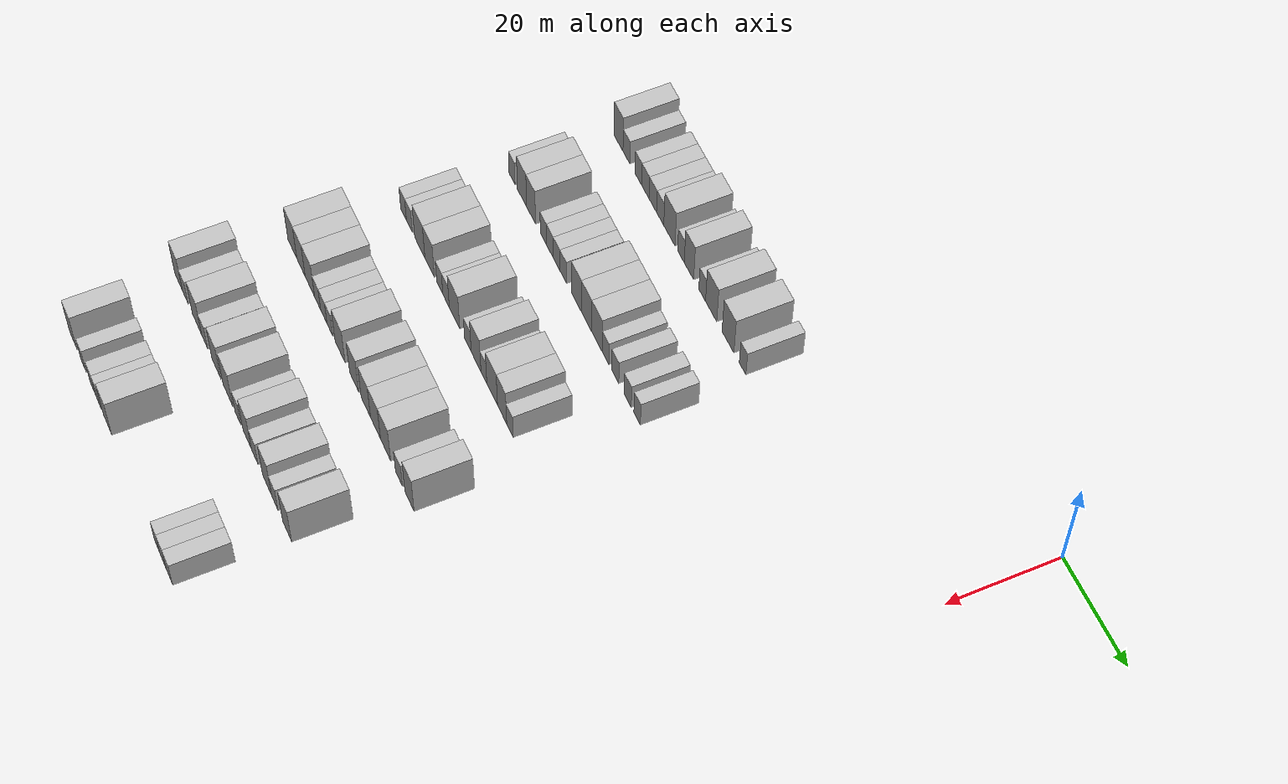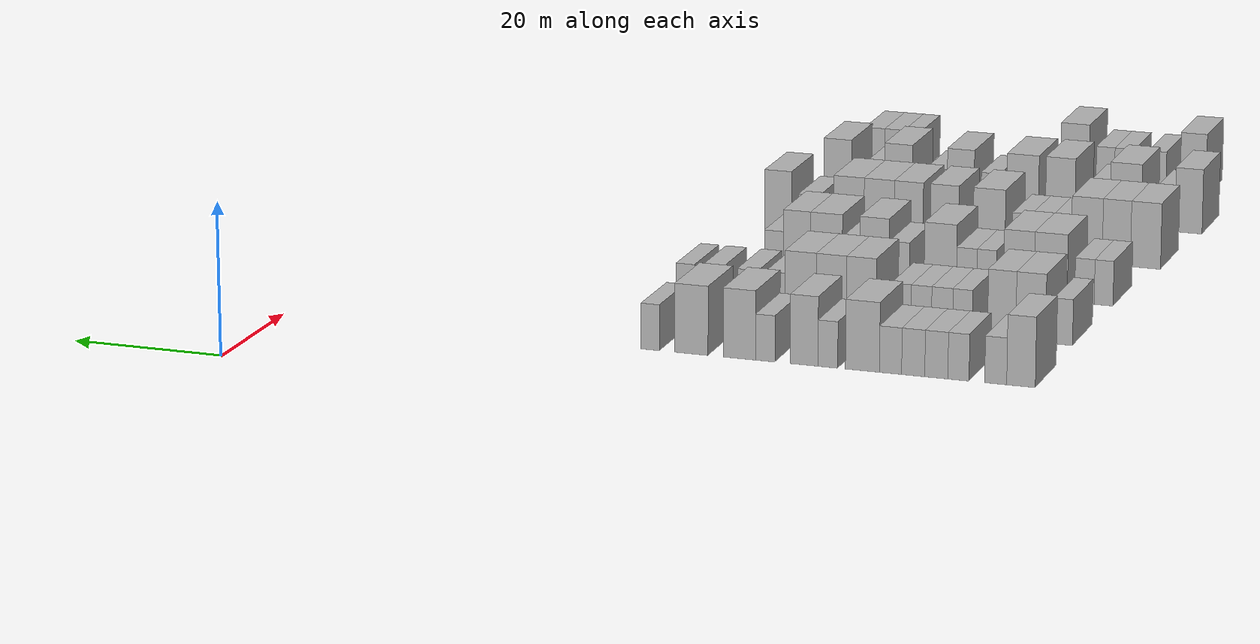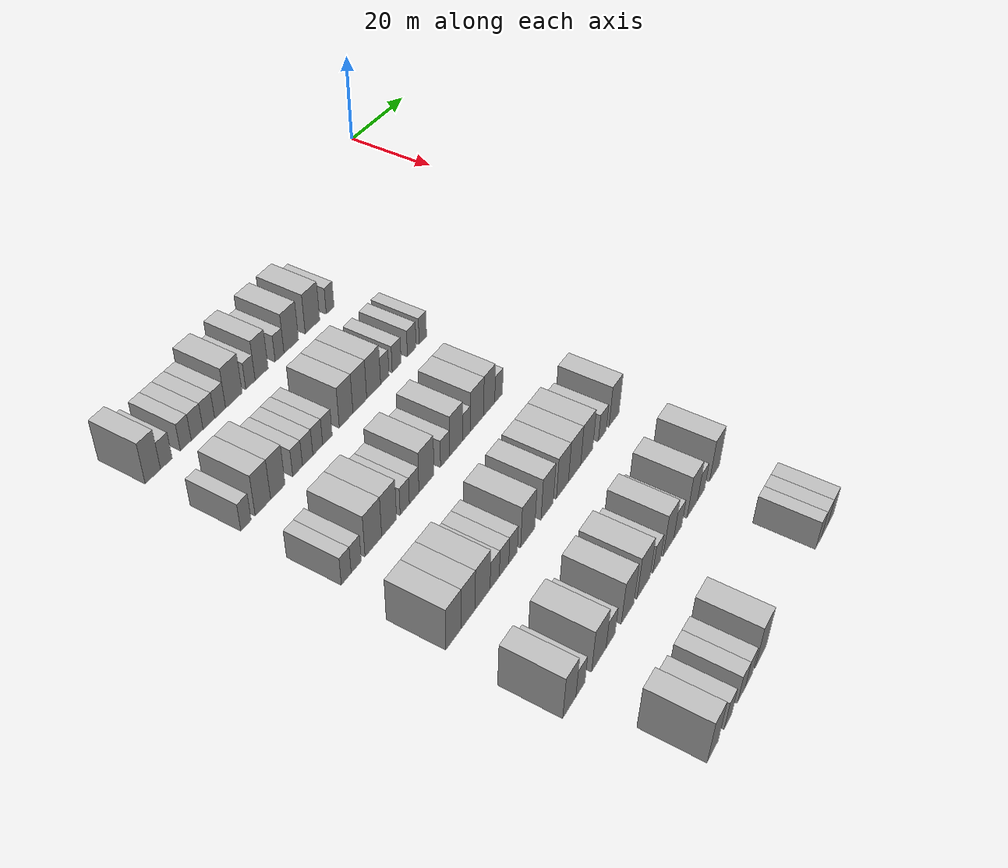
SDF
<sdf version="1.6">
 <world name="default">
  <model name="building_68">
   <static>1</static>
   <pose>25.0000 -98.1795 0 0.000000 0.000000 0.000000</pose>
   <link name="link">
    <pose>0 0 4.50 0 0 0</pose>
    <collision name="collision"><geometry><box><size>10.0000 3.6378 9.0000</size></box></geometry></collision>
    <visual name="visual">
     <cast_shadows>0</cast_shadows>
     <geometry><box><size>10.0000 3.6378 9.0000</size></box></geometry>
     <material>
      <script>
       <uri>model://HANNAS_wall/materials/scripts</uri>
       <uri>model://HANNAS_wall/materials/textures</uri>
       <name>vrc/HANNAS_wall</name>
      </script>
     </material>
    </visual>
   </link>
  </model>
  <model name="building_69">
   <static>1</static>
   <pose>25.0000 -94.9597 0 0.000000 0.000000 0.000000</pose>
   <link name="link">
    <pose>0 0 3.00 0 0 0</pose>
    <collision name="collision"><geometry><box><size>10.0000 2.8019 6.0000</size></box></geometry></collision>
    <visual name="visual">
     <cast_shadows>0</cast_shadows>
     <geometry><box><size>10.0000 2.8019 6.0000</size></box></geometry>
     <material>
      <script>
       <uri>model://HANNAS_wall/materials/scripts</uri>
       <uri>model://HANNAS_wall/materials/textures</uri>
       <name>vrc/HANNAS_wall</name>
      </script>
     </material>
    </visual>
   </link>
  </model>
  <model name="building_70">
   <static>1</static>
   <pose>25.0000 -90.2027 0 0.000000 0.000000 0.000000</pose>
   <link name="link">
    <pose>0 0 3.00 0 0 0</pose>
    <collision name="collision"><geometry><box><size>10.0000 2.7120 6.0000</size></box></geometry></collision>
    <visual name="visual">
     <cast_shadows>0</cast_shadows>
     <geometry><box><size>10.0000 2.7120 6.0000</size></box></geometry>
     <material>
      <script>
       <uri>model://HANNAS_wall/materials/scripts</uri>
       <uri>model://HANNAS_wall/materials/textures</uri>
       <name>vrc/HANNAS_wall</name>
      </script>
     </material>
    </visual>
   </link>
  </model>
  <model name="building_71">
   <static>1</static>
   <pose>25.0000 -87.3622 0 0.000000 0.000000 0.000000</pose>
   <link name="link">
    <pose>0 0 3.00 0 0 0</pose>
    <collision name="collision"><geometry><box><size>10.0000 2.9691 6.0000</size></box></geometry></collision>
    <visual name="visual">
     <cast_shadows>0</cast_shadows>
     <geometry><box><size>10.0000 2.9691 6.0000</size></box></geometry>
     <material>
      <script>
       <uri>model://HANNAS_wall/materials/scripts</uri>
       <uri>model://HANNAS_wall/materials/textures</uri>
       <name>vrc/HANNAS_wall</name>
      </script>
     </material>
    </visual>
   </link>
  </model>
  <model name="building_72">
   <static>1</static>
   <pose>25.0000 -84.3851 0 0.000000 0.000000 0.000000</pose>
   <link name="link">
    <pose>0 0 3.00 0 0 0</pose>
    <collision name="collision"><geometry><box><size>10.0000 2.9850 6.0000</size></box></geometry></collision>
    <visual name="visual">
     <cast_shadows>0</cast_shadows>
     <geometry><box><size>10.0000 2.9850 6.0000</size></box></geometry>
     <material>
      <script>
       <uri>model://HANNAS_wall/materials/scripts</uri>
       <uri>model://HANNAS_wall/materials/textures</uri>
       <name>vrc/HANNAS_wall</name>
      </script>
     </material>
    </visual>
   </link>
  </model>
  <model name="building_73">
   <static>1</static>
   <pose>25.0000 -81.4628 0 0.000000 0.000000 0.000000</pose>
   <link name="link">
    <pose>0 0 3.00 0 0 0</pose>
    <collision name="collision"><geometry><box><size>10.0000 2.8596 6.0000</size></box></geometry></collision>
    <visual name="visual">
     <cast_shadows>0</cast_shadows>
     <geometry><box><size>10.0000 2.8596 6.0000</size></box></geometry>
     <material>
      <script>
       <uri>model://HANNAS_wall/materials/scripts</uri>
       <uri>model://HANNAS_wall/materials/textures</uri>
       <name>vrc/HANNAS_wall</name>
      </script>
     </material>
    </visual>
   </link>
  </model>
  <model name="building_74">
   <static>1</static>
   <pose>25.0000 -77.8253 0 0.000000 0.000000 0.000000</pose>
   <link name="link">
    <pose>0 0 4.50 0 0 0</pose>
    <collision name="collision"><geometry><box><size>10.0000 4.4153 9.0000</size></box></geometry></collision>
    <visual name="visual">
     <cast_shadows>0</cast_shadows>
     <geometry><box><size>10.0000 4.4153 9.0000</size></box></geometry>
     <material>
      <script>
       <uri>model://HANNAS_wall/materials/scripts</uri>
       <uri>model://HANNAS_wall/materials/textures</uri>
       <name>vrc/HANNAS_wall</name>
      </script>
     </material>
    </visual>
   </link>
  </model>
  <model name="building_75">
   <static>1</static>
   <pose>25.0000 -73.3336 0 0.000000 0.000000 0.000000</pose>
   <link name="link">
    <pose>0 0 3.00 0 0 0</pose>
    <collision name="collision"><geometry><box><size>10.0000 2.5679 6.0000</size></box></geometry></collision>
    <visual name="visual">
     <cast_shadows>0</cast_shadows>
     <geometry><box><size>10.0000 2.5679 6.0000</size></box></geometry>
     <material>
      <script>
       <uri>model://HANNAS_wall/materials/scripts</uri>
       <uri>model://HANNAS_wall/materials/textures</uri>
       <name>vrc/HANNAS_wall</name>
      </script>
     </material>
    </visual>
   </link>
  </model>
  <model name="building_76">
   <static>1</static>
   <pose>25.0000 -70.2346 0 0.000000 0.000000 0.000000</pose>
   <link name="link">
    <pose>0 0 4.50 0 0 0</pose>
    <collision name="collision"><geometry><box><size>10.0000 3.6302 9.0000</size></box></geometry></collision>
    <visual name="visual">
     <cast_shadows>0</cast_shadows>
     <geometry><box><size>10.0000 3.6302 9.0000</size></box></geometry>
     <material>
      <script>
       <uri>model://HANNAS_wall/materials/scripts</uri>
       <uri>model://HANNAS_wall/materials/textures</uri>
       <name>vrc/HANNAS_wall</name>
      </script>
     </material>
    </visual>
   </link>
  </model>
  <model name="building_77">
   <static>1</static>
   <pose>25.0000 -65.1470 0 0.000000 0.000000 0.000000</pose>
   <link name="link">
    <pose>0 0 3.00 0 0 0</pose>
    <collision name="collision"><geometry><box><size>10.0000 2.5449 6.0000</size></box></geometry></collision>
    <visual name="visual">
     <cast_shadows>0</cast_shadows>
     <geometry><box><size>10.0000 2.5449 6.0000</size></box></geometry>
     <material>
      <script>
       <uri>model://HANNAS_wall/materials/scripts</uri>
       <uri>model://HANNAS_wall/materials/textures</uri>
       <name>vrc/HANNAS_wall</name>
      </script>
     </material>
    </visual>
   </link>
  </model>
  <model name="building_78">
   <static>1</static>
   <pose>25.0000 -61.7472 0 0.000000 0.000000 0.000000</pose>
   <link name="link">
    <pose>0 0 4.50 0 0 0</pose>
    <collision name="collision"><geometry><box><size>10.0000 4.2547 9.0000</size></box></geometry></collision>
    <visual name="visual">
     <cast_shadows>0</cast_shadows>
     <geometry><box><size>10.0000 4.2547 9.0000</size></box></geometry>
     <material>
      <script>
       <uri>model://HANNAS_wall/materials/scripts</uri>
       <uri>model://HANNAS_wall/materials/textures</uri>
       <name>vrc/HANNAS_wall</name>
      </script>
     </material>
    </visual>
   </link>
  </model>
  <model name="building_79">
   <static>1</static>
   <pose>25.0000 -55.4081 0 0.000000 0.000000 0.000000</pose>
   <link name="link">
    <pose>0 0 4.50 0 0 0</pose>
    <collision name="collision"><geometry><box><size>10.0000 4.4236 9.0000</size></box></geometry></collision>
    <visual name="visual">
     <cast_shadows>0</cast_shadows>
     <geometry><box><size>10.0000 4.4236 9.0000</size></box></geometry>
     <material>
      <script>
       <uri>model://HANNAS_wall/materials/scripts</uri>
       <uri>model://HANNAS_wall/materials/textures</uri>
       <name>vrc/HANNAS_wall</name>
      </script>
     </material>
    </visual>
   </link>
  </model>
  <model name="building_80">
   <static>1</static>
   <pose>25.0000 -49.9719 0 0.000000 0.000000 0.000000</pose>
   <link name="link">
    <pose>0 0 3.00 0 0 0</pose>
    <collision name="collision"><geometry><box><size>10.0000 2.4488 6.0000</size></box></geometry></collision>
    <visual name="visual">
     <cast_shadows>0</cast_shadows>
     <geometry><box><size>10.0000 2.4488 6.0000</size></box></geometry>
     <material>
      <script>
       <uri>model://HANNAS_wall/materials/scripts</uri>
       <uri>model://HANNAS_wall/materials/textures</uri>
       <name>vrc/HANNAS_wall</name>
      </script>
     </material>
    </visual>
   </link>
  </model>
  <model name="building_248">
   <static>1</static>
   <pose>44.0000 -98.4805 0 0.000000 0.000000 0.000000</pose>
   <link name="link">
    <pose>0 0 3.00 0 0 0</pose>
    <collision name="collision"><geometry><box><size>10.0000 2.5162 6.0000</size></box></geometry></collision>
    <visual name="visual">
     <cast_shadows>0</cast_shadows>
     <geometry><box><size>10.0000 2.5162 6.0000</size></box></geometry>
     <material>
      <script>
       <uri>model://HANNAS_wall/materials/scripts</uri>
       <uri>model://HANNAS_wall/materials/textures</uri>
       <name>vrc/HANNAS_wall</name>
      </script>
     </material>
    </visual>
   </link>
  </model>
  <model name="building_249">
   <static>1</static>
   <pose>44.0000 -94.2760 0 0.000000 0.000000 0.000000</pose>
   <link name="link">
    <pose>0 0 4.50 0 0 0</pose>
    <collision name="collision"><geometry><box><size>10.0000 3.8926 9.0000</size></box></geometry></collision>
    <visual name="visual">
     <cast_shadows>0</cast_shadows>
     <geometry><box><size>10.0000 3.8926 9.0000</size></box></geometry>
     <material>
      <script>
       <uri>model://HANNAS_wall/materials/scripts</uri>
       <uri>model://HANNAS_wall/materials/textures</uri>
       <name>vrc/HANNAS_wall</name>
      </script>
     </material>
    </visual>
   </link>
  </model>
  <model name="building_250">
   <static>1</static>
   <pose>44.0000 -90.4767 0 0.000000 0.000000 0.000000</pose>
   <link name="link">
    <pose>0 0 4.50 0 0 0</pose>
    <collision name="collision"><geometry><box><size>10.0000 3.7061 9.0000</size></box></geometry></collision>
    <visual name="visual">
     <cast_shadows>0</cast_shadows>
     <geometry><box><size>10.0000 3.7061 9.0000</size></box></geometry>
     <material>
      <script>
       <uri>model://HANNAS_wall/materials/scripts</uri>
       <uri>model://HANNAS_wall/materials/textures</uri>
       <name>vrc/HANNAS_wall</name>
      </script>
     </material>
    </visual>
   </link>
  </model>
  <model name="building_251">
   <static>1</static>
   <pose>44.0000 -85.3222 0 0.000000 0.000000 0.000000</pose>
   <link name="link">
    <pose>0 0 3.00 0 0 0</pose>
    <collision name="collision"><geometry><box><size>10.0000 2.6028 6.0000</size></box></geometry></collision>
    <visual name="visual">
     <cast_shadows>0</cast_shadows>
     <geometry><box><size>10.0000 2.6028 6.0000</size></box></geometry>
     <material>
      <script>
       <uri>model://HANNAS_wall/materials/scripts</uri>
       <uri>model://HANNAS_wall/materials/textures</uri>
       <name>vrc/HANNAS_wall</name>
      </script>
     </material>
    </visual>
   </link>
  </model>
  <model name="building_252">
   <static>1</static>
   <pose>44.0000 -82.6232 0 0.000000 0.000000 0.000000</pose>
   <link name="link">
    <pose>0 0 3.00 0 0 0</pose>
    <collision name="collision"><geometry><box><size>10.0000 2.7951 6.0000</size></box></geometry></collision>
    <visual name="visual">
     <cast_shadows>0</cast_shadows>
     <geometry><box><size>10.0000 2.7951 6.0000</size></box></geometry>
     <material>
      <script>
       <uri>model://HANNAS_wall/materials/scripts</uri>
       <uri>model://HANNAS_wall/materials/textures</uri>
       <name>vrc/HANNAS_wall</name>
      </script>
     </material>
    </visual>
   </link>
  </model>
  <model name="building_253">
   <static>1</static>
   <pose>44.0000 -79.8753 0 0.000000 0.000000 0.000000</pose>
   <link name="link">
    <pose>0 0 3.00 0 0 0</pose>
    <collision name="collision"><geometry><box><size>10.0000 2.7007 6.0000</size></box></geometry></collision>
    <visual name="visual">
     <cast_shadows>0</cast_shadows>
     <geometry><box><size>10.0000 2.7007 6.0000</size></box></geometry>
     <material>
      <script>
       <uri>model://HANNAS_wall/materials/scripts</uri>
       <uri>model://HANNAS_wall/materials/textures</uri>
       <name>vrc/HANNAS_wall</name>
      </script>
     </material>
    </visual>
   </link>
  </model>
  <model name="building_254">
   <static>1</static>
   <pose>44.0000 -77.2009 0 0.000000 0.000000 0.000000</pose>
   <link name="link">
    <pose>0 0 3.00 0 0 0</pose>
    <collision name="collision"><geometry><box><size>10.0000 2.6481 6.0000</size></box></geometry></collision>
    <visual name="visual">
     <cast_shadows>0</cast_shadows>
     <geometry><box><size>10.0000 2.6481 6.0000</size></box></geometry>
     <material>
      <script>
       <uri>model://HANNAS_wall/materials/scripts</uri>
       <uri>model://HANNAS_wall/materials/textures</uri>
       <name>vrc/HANNAS_wall</name>
      </script>
     </material>
    </visual>
   </link>
  </model>
  <model name="building_255">
   <static>1</static>
   <pose>44.0000 -71.8990 0 0.000000 0.000000 0.000000</pose>
   <link name="link">
    <pose>0 0 4.50 0 0 0</pose>
    <collision name="collision"><geometry><box><size>10.0000 3.9558 9.0000</size></box></geometry></collision>
    <visual name="visual">
     <cast_shadows>0</cast_shadows>
     <geometry><box><size>10.0000 3.9558 9.0000</size></box></geometry>
     <material>
      <script>
       <uri>model://HANNAS_wall/materials/scripts</uri>
       <uri>model://HANNAS_wall/materials/textures</uri>
       <name>vrc/HANNAS_wall</name>
      </script>
     </material>
    </visual>
   </link>
  </model>
  <model name="building_256">
   <static>1</static>
   <pose>44.0000 -67.8866 0 0.000000 0.000000 0.000000</pose>
   <link name="link">
    <pose>0 0 4.50 0 0 0</pose>
    <collision name="collision"><geometry><box><size>10.0000 4.0691 9.0000</size></box></geometry></collision>
    <visual name="visual">
     <cast_shadows>0</cast_shadows>
     <geometry><box><size>10.0000 4.0691 9.0000</size></box></geometry>
     <material>
      <script>
       <uri>model://HANNAS_wall/materials/scripts</uri>
       <uri>model://HANNAS_wall/materials/textures</uri>
       <name>vrc/HANNAS_wall</name>
      </script>
     </material>
    </visual>
   </link>
  </model>
  <model name="building_257">
   <static>1</static>
   <pose>44.0000 -63.7514 0 0.000000 0.000000 0.000000</pose>
   <link name="link">
    <pose>0 0 4.50 0 0 0</pose>
    <collision name="collision"><geometry><box><size>10.0000 4.2013 9.0000</size></box></geometry></collision>
    <visual name="visual">
     <cast_shadows>0</cast_shadows>
     <geometry><box><size>10.0000 4.2013 9.0000</size></box></geometry>
     <material>
      <script>
       <uri>model://HANNAS_wall/materials/scripts</uri>
       <uri>model://HANNAS_wall/materials/textures</uri>
       <name>vrc/HANNAS_wall</name>
      </script>
     </material>
    </visual>
   </link>
  </model>
  <model name="building_258">
   <static>1</static>
   <pose>44.0000 -60.3575 0 0.000000 0.000000 0.000000</pose>
   <link name="link">
    <pose>0 0 3.00 0 0 0</pose>
    <collision name="collision"><geometry><box><size>10.0000 2.5864 6.0000</size></box></geometry></collision>
    <visual name="visual">
     <cast_shadows>0</cast_shadows>
     <geometry><box><size>10.0000 2.5864 6.0000</size></box></geometry>
     <material>
      <script>
       <uri>model://HANNAS_wall/materials/scripts</uri>
       <uri>model://HANNAS_wall/materials/textures</uri>
       <name>vrc/HANNAS_wall</name>
      </script>
     </material>
    </visual>
   </link>
  </model>
  <model name="building_259">
   <static>1</static>
   <pose>44.0000 -56.6577 0 0.000000 0.000000 0.000000</pose>
   <link name="link">
    <pose>0 0 3.00 0 0 0</pose>
    <collision name="collision"><geometry><box><size>10.0000 2.8132 6.0000</size></box></geometry></collision>
    <visual name="visual">
     <cast_shadows>0</cast_shadows>
     <geometry><box><size>10.0000 2.8132 6.0000</size></box></geometry>
     <material>
      <script>
       <uri>model://HANNAS_wall/materials/scripts</uri>
       <uri>model://HANNAS_wall/materials/textures</uri>
       <name>vrc/HANNAS_wall</name>
      </script>
     </material>
    </visual>
   </link>
  </model>
  <model name="building_260">
   <static>1</static>
   <pose>44.0000 -51.8497 0 0.000000 0.000000 0.000000</pose>
   <link name="link">
    <pose>0 0 3.00 0 0 0</pose>
    <collision name="collision"><geometry><box><size>10.0000 2.8027 6.0000</size></box></geometry></collision>
    <visual name="visual">
     <cast_shadows>0</cast_shadows>
     <geometry><box><size>10.0000 2.8027 6.0000</size></box></geometry>
     <material>
      <script>
       <uri>model://HANNAS_wall/materials/scripts</uri>
       <uri>model://HANNAS_wall/materials/textures</uri>
       <name>vrc/HANNAS_wall</name>
      </script>
     </material>
    </visual>
   </link>
  </model>
  <model name="building_261">
   <static>1</static>
   <pose>44.0000 -48.2028 0 0.000000 0.000000 0.000000</pose>
   <link name="link">
    <pose>0 0 3.00 0 0 0</pose>
    <collision name="collision"><geometry><box><size>10.0000 2.4911 6.0000</size></box></geometry></collision>
    <visual name="visual">
     <cast_shadows>0</cast_shadows>
     <geometry><box><size>10.0000 2.4911 6.0000</size></box></geometry>
     <material>
      <script>
       <uri>model://HANNAS_wall/materials/scripts</uri>
       <uri>model://HANNAS_wall/materials/textures</uri>
       <name>vrc/HANNAS_wall</name>
      </script>
     </material>
    </visual>
   </link>
  </model>
  <model name="building_416">
   <static>1</static>
   <pose>63.0000 -98.9099 0 0.000000 0.000000 0.000000</pose>
   <link name="link">
    <pose>0 0 3.00 0 0 0</pose>
    <collision name="collision"><geometry><box><size>10.0000 2.5161 6.0000</size></box></geometry></collision>
    <visual name="visual">
     <cast_shadows>0</cast_shadows>
     <geometry><box><size>10.0000 2.5161 6.0000</size></box></geometry>
     <material>
      <script>
       <uri>model://HANNAS_wall/materials/scripts</uri>
       <uri>model://HANNAS_wall/materials/textures</uri>
       <name>vrc/HANNAS_wall</name>
      </script>
     </material>
    </visual>
   </link>
  </model>
  <model name="building_417">
   <static>1</static>
   <pose>63.0000 -96.3481 0 0.000000 0.000000 0.000000</pose>
   <link name="link">
    <pose>0 0 3.00 0 0 0</pose>
    <collision name="collision"><geometry><box><size>10.0000 2.6074 6.0000</size></box></geometry></collision>
    <visual name="visual">
     <cast_shadows>0</cast_shadows>
     <geometry><box><size>10.0000 2.6074 6.0000</size></box></geometry>
     <material>
      <script>
       <uri>model://HANNAS_wall/materials/scripts</uri>
       <uri>model://HANNAS_wall/materials/textures</uri>
       <name>vrc/HANNAS_wall</name>
      </script>
     </material>
    </visual>
   </link>
  </model>
  <model name="building_418">
   <static>1</static>
   <pose>63.0000 -91.8166 0 0.000000 0.000000 0.000000</pose>
   <link name="link">
    <pose>0 0 4.50 0 0 0</pose>
    <collision name="collision"><geometry><box><size>10.0000 4.4556 9.0000</size></box></geometry></collision>
    <visual name="visual">
     <cast_shadows>0</cast_shadows>
     <geometry><box><size>10.0000 4.4556 9.0000</size></box></geometry>
     <material>
      <script>
       <uri>model://HANNAS_wall/materials/scripts</uri>
       <uri>model://HANNAS_wall/materials/textures</uri>
       <name>vrc/HANNAS_wall</name>
      </script>
     </material>
    </visual>
   </link>
  </model>
  <model name="building_419">
   <static>1</static>
   <pose>63.0000 -87.5421 0 0.000000 0.000000 0.000000</pose>
   <link name="link">
    <pose>0 0 4.50 0 0 0</pose>
    <collision name="collision"><geometry><box><size>10.0000 4.0933 9.0000</size></box></geometry></collision>
    <visual name="visual">
     <cast_shadows>0</cast_shadows>
     <geometry><box><size>10.0000 4.0933 9.0000</size></box></geometry>
     <material>
      <script>
       <uri>model://HANNAS_wall/materials/scripts</uri>
       <uri>model://HANNAS_wall/materials/textures</uri>
       <name>vrc/HANNAS_wall</name>
      </script>
     </material>
    </visual>
   </link>
  </model>
  <model name="building_420">
   <static>1</static>
   <pose>63.0000 -83.1915 0 0.000000 0.000000 0.000000</pose>
   <link name="link">
    <pose>0 0 3.00 0 0 0</pose>
    <collision name="collision"><geometry><box><size>10.0000 2.6080 6.0000</size></box></geometry></collision>
    <visual name="visual">
     <cast_shadows>0</cast_shadows>
     <geometry><box><size>10.0000 2.6080 6.0000</size></box></geometry>
     <material>
      <script>
       <uri>model://HANNAS_wall/materials/scripts</uri>
       <uri>model://HANNAS_wall/materials/textures</uri>
       <name>vrc/HANNAS_wall</name>
      </script>
     </material>
    </visual>
   </link>
  </model>
  <model name="building_421">
   <static>1</static>
   <pose>63.0000 -80.5084 0 0.000000 0.000000 0.000000</pose>
   <link name="link">
    <pose>0 0 3.00 0 0 0</pose>
    <collision name="collision"><geometry><box><size>10.0000 2.7582 6.0000</size></box></geometry></collision>
    <visual name="visual">
     <cast_shadows>0</cast_shadows>
     <geometry><box><size>10.0000 2.7582 6.0000</size></box></geometry>
     <material>
      <script>
       <uri>model://HANNAS_wall/materials/scripts</uri>
       <uri>model://HANNAS_wall/materials/textures</uri>
       <name>vrc/HANNAS_wall</name>
      </script>
     </material>
    </visual>
   </link>
  </model>
  <model name="building_422">
   <static>1</static>
   <pose>63.0000 -76.9272 0 0.000000 0.000000 0.000000</pose>
   <link name="link">
    <pose>0 0 4.50 0 0 0</pose>
    <collision name="collision"><geometry><box><size>10.0000 4.4040 9.0000</size></box></geometry></collision>
    <visual name="visual">
     <cast_shadows>0</cast_shadows>
     <geometry><box><size>10.0000 4.4040 9.0000</size></box></geometry>
     <material>
      <script>
       <uri>model://HANNAS_wall/materials/scripts</uri>
       <uri>model://HANNAS_wall/materials/textures</uri>
       <name>vrc/HANNAS_wall</name>
      </script>
     </material>
    </visual>
   </link>
  </model>
  <model name="building_423">
   <static>1</static>
   <pose>63.0000 -71.3343 0 0.000000 0.000000 0.000000</pose>
   <link name="link">
    <pose>0 0 3.00 0 0 0</pose>
    <collision name="collision"><geometry><box><size>10.0000 2.7818 6.0000</size></box></geometry></collision>
    <visual name="visual">
     <cast_shadows>0</cast_shadows>
     <geometry><box><size>10.0000 2.7818 6.0000</size></box></geometry>
     <material>
      <script>
       <uri>model://HANNAS_wall/materials/scripts</uri>
       <uri>model://HANNAS_wall/materials/textures</uri>
       <name>vrc/HANNAS_wall</name>
      </script>
     </material>
    </visual>
   </link>
  </model>
  <model name="building_424">
   <static>1</static>
   <pose>63.0000 -67.9296 0 0.000000 0.000000 0.000000</pose>
   <link name="link">
    <pose>0 0 4.50 0 0 0</pose>
    <collision name="collision"><geometry><box><size>10.0000 4.0277 9.0000</size></box></geometry></collision>
    <visual name="visual">
     <cast_shadows>0</cast_shadows>
     <geometry><box><size>10.0000 4.0277 9.0000</size></box></geometry>
     <material>
      <script>
       <uri>model://HANNAS_wall/materials/scripts</uri>
       <uri>model://HANNAS_wall/materials/textures</uri>
       <name>vrc/HANNAS_wall</name>
      </script>
     </material>
    </visual>
   </link>
  </model>
  <model name="building_425">
   <static>1</static>
   <pose>63.0000 -64.7150 0 0.000000 0.000000 0.000000</pose>
   <link name="link">
    <pose>0 0 3.00 0 0 0</pose>
    <collision name="collision"><geometry><box><size>10.0000 2.4014 6.0000</size></box></geometry></collision>
    <visual name="visual">
     <cast_shadows>0</cast_shadows>
     <geometry><box><size>10.0000 2.4014 6.0000</size></box></geometry>
     <material>
      <script>
       <uri>model://HANNAS_wall/materials/scripts</uri>
       <uri>model://HANNAS_wall/materials/textures</uri>
       <name>vrc/HANNAS_wall</name>
      </script>
     </material>
    </visual>
   </link>
  </model>
  <model name="building_426">
   <static>1</static>
   <pose>63.0000 -61.3264 0 0.000000 0.000000 0.000000</pose>
   <link name="link">
    <pose>0 0 4.50 0 0 0</pose>
    <collision name="collision"><geometry><box><size>10.0000 4.3758 9.0000</size></box></geometry></collision>
    <visual name="visual">
     <cast_shadows>0</cast_shadows>
     <geometry><box><size>10.0000 4.3758 9.0000</size></box></geometry>
     <material>
      <script>
       <uri>model://HANNAS_wall/materials/scripts</uri>
       <uri>model://HANNAS_wall/materials/textures</uri>
       <name>vrc/HANNAS_wall</name>
      </script>
     </material>
    </visual>
   </link>
  </model>
  <model name="building_427">
   <static>1</static>
   <pose>63.0000 -57.2780 0 0.000000 0.000000 0.000000</pose>
   <link name="link">
    <pose>0 0 4.50 0 0 0</pose>
    <collision name="collision"><geometry><box><size>10.0000 3.7210 9.0000</size></box></geometry></collision>
    <visual name="visual">
     <cast_shadows>0</cast_shadows>
     <geometry><box><size>10.0000 3.7210 9.0000</size></box></geometry>
     <material>
      <script>
       <uri>model://HANNAS_wall/materials/scripts</uri>
       <uri>model://HANNAS_wall/materials/textures</uri>
       <name>vrc/HANNAS_wall</name>
      </script>
     </material>
    </visual>
   </link>
  </model>
  <model name="building_428">
   <static>1</static>
   <pose>63.0000 -54.0971 0 0.000000 0.000000 0.000000</pose>
   <link name="link">
    <pose>0 0 3.00 0 0 0</pose>
    <collision name="collision"><geometry><box><size>10.0000 2.6409 6.0000</size></box></geometry></collision>
    <visual name="visual">
     <cast_shadows>0</cast_shadows>
     <geometry><box><size>10.0000 2.6409 6.0000</size></box></geometry>
     <material>
      <script>
       <uri>model://HANNAS_wall/materials/scripts</uri>
       <uri>model://HANNAS_wall/materials/textures</uri>
       <name>vrc/HANNAS_wall</name>
      </script>
     </material>
    </visual>
   </link>
  </model>
  <model name="building_582">
   <static>1</static>
   <pose>82.0000 -99.7617 0 0.000000 0.000000 0.000000</pose>
   <link name="link">
    <pose>0 0 4.50 0 0 0</pose>
    <collision name="collision"><geometry><box><size>10.0000 4.1171 9.0000</size></box></geometry></collision>
    <visual name="visual">
     <cast_shadows>0</cast_shadows>
     <geometry><box><size>10.0000 4.1171 9.0000</size></box></geometry>
     <material>
      <script>
       <uri>model://HANNAS_wall/materials/scripts</uri>
       <uri>model://HANNAS_wall/materials/textures</uri>
       <name>vrc/HANNAS_wall</name>
      </script>
     </material>
    </visual>
   </link>
  </model>
  <model name="building_583">
   <static>1</static>
   <pose>82.0000 -95.7777 0 0.000000 0.000000 0.000000</pose>
   <link name="link">
    <pose>0 0 4.50 0 0 0</pose>
    <collision name="collision"><geometry><box><size>10.0000 3.8509 9.0000</size></box></geometry></collision>
    <visual name="visual">
     <cast_shadows>0</cast_shadows>
     <geometry><box><size>10.0000 3.8509 9.0000</size></box></geometry>
     <material>
      <script>
       <uri>model://HANNAS_wall/materials/scripts</uri>
       <uri>model://HANNAS_wall/materials/textures</uri>
       <name>vrc/HANNAS_wall</name>
      </script>
     </material>
    </visual>
   </link>
  </model>
  <model name="building_584">
   <static>1</static>
   <pose>82.0000 -91.7163 0 0.000000 0.000000 0.000000</pose>
   <link name="link">
    <pose>0 0 4.50 0 0 0</pose>
    <collision name="collision"><geometry><box><size>10.0000 4.2718 9.0000</size></box></geometry></collision>
    <visual name="visual">
     <cast_shadows>0</cast_shadows>
     <geometry><box><size>10.0000 4.2718 9.0000</size></box></geometry>
     <material>
      <script>
       <uri>model://HANNAS_wall/materials/scripts</uri>
       <uri>model://HANNAS_wall/materials/textures</uri>
       <name>vrc/HANNAS_wall</name>
      </script>
     </material>
    </visual>
   </link>
  </model>
  <model name="building_585">
   <static>1</static>
   <pose>82.0000 -88.2272 0 0.000000 0.000000 0.000000</pose>
   <link name="link">
    <pose>0 0 3.00 0 0 0</pose>
    <collision name="collision"><geometry><box><size>10.0000 2.7066 6.0000</size></box></geometry></collision>
    <visual name="visual">
     <cast_shadows>0</cast_shadows>
     <geometry><box><size>10.0000 2.7066 6.0000</size></box></geometry>
     <material>
      <script>
       <uri>model://HANNAS_wall/materials/scripts</uri>
       <uri>model://HANNAS_wall/materials/textures</uri>
       <name>vrc/HANNAS_wall</name>
      </script>
     </material>
    </visual>
   </link>
  </model>
  <model name="building_586">
   <static>1</static>
   <pose>82.0000 -85.4655 0 0.000000 0.000000 0.000000</pose>
   <link name="link">
    <pose>0 0 3.00 0 0 0</pose>
    <collision name="collision"><geometry><box><size>10.0000 2.8168 6.0000</size></box></geometry></collision>
    <visual name="visual">
     <cast_shadows>0</cast_shadows>
     <geometry><box><size>10.0000 2.8168 6.0000</size></box></geometry>
     <material>
      <script>
       <uri>model://HANNAS_wall/materials/scripts</uri>
       <uri>model://HANNAS_wall/materials/textures</uri>
       <name>vrc/HANNAS_wall</name>
      </script>
     </material>
    </visual>
   </link>
  </model>
  <model name="building_587">
   <static>1</static>
   <pose>82.0000 -82.7577 0 0.000000 0.000000 0.000000</pose>
   <link name="link">
    <pose>0 0 3.00 0 0 0</pose>
    <collision name="collision"><geometry><box><size>10.0000 2.5988 6.0000</size></box></geometry></collision>
    <visual name="visual">
     <cast_shadows>0</cast_shadows>
     <geometry><box><size>10.0000 2.5988 6.0000</size></box></geometry>
     <material>
      <script>
       <uri>model://HANNAS_wall/materials/scripts</uri>
       <uri>model://HANNAS_wall/materials/textures</uri>
       <name>vrc/HANNAS_wall</name>
      </script>
     </material>
    </visual>
   </link>
  </model>
  <model name="building_588">
   <static>1</static>
   <pose>82.0000 -78.2452 0 0.000000 0.000000 0.000000</pose>
   <link name="link">
    <pose>0 0 4.50 0 0 0</pose>
    <collision name="collision"><geometry><box><size>10.0000 4.4263 9.0000</size></box></geometry></collision>
    <visual name="visual">
     <cast_shadows>0</cast_shadows>
     <geometry><box><size>10.0000 4.4263 9.0000</size></box></geometry>
     <material>
      <script>
       <uri>model://HANNAS_wall/materials/scripts</uri>
       <uri>model://HANNAS_wall/materials/textures</uri>
       <name>vrc/HANNAS_wall</name>
      </script>
     </material>
    </visual>
   </link>
  </model>
  <model name="building_589">
   <static>1</static>
   <pose>82.0000 -72.0355 0 0.000000 0.000000 0.000000</pose>
   <link name="link">
    <pose>0 0 4.50 0 0 0</pose>
    <collision name="collision"><geometry><box><size>10.0000 3.9930 9.0000</size></box></geometry></collision>
    <visual name="visual">
     <cast_shadows>0</cast_shadows>
     <geometry><box><size>10.0000 3.9930 9.0000</size></box></geometry>
     <material>
      <script>
       <uri>model://HANNAS_wall/materials/scripts</uri>
       <uri>model://HANNAS_wall/materials/textures</uri>
       <name>vrc/HANNAS_wall</name>
      </script>
     </material>
    </visual>
   </link>
  </model>
  <model name="building_590">
   <static>1</static>
   <pose>82.0000 -67.0117 0 0.000000 0.000000 0.000000</pose>
   <link name="link">
    <pose>0 0 4.50 0 0 0</pose>
    <collision name="collision"><geometry><box><size>10.0000 4.0546 9.0000</size></box></geometry></collision>
    <visual name="visual">
     <cast_shadows>0</cast_shadows>
     <geometry><box><size>10.0000 4.0546 9.0000</size></box></geometry>
     <material>
      <script>
       <uri>model://HANNAS_wall/materials/scripts</uri>
       <uri>model://HANNAS_wall/materials/textures</uri>
       <name>vrc/HANNAS_wall</name>
      </script>
     </material>
    </visual>
   </link>
  </model>
  <model name="building_591">
   <static>1</static>
   <pose>82.0000 -62.8643 0 0.000000 0.000000 0.000000</pose>
   <link name="link">
    <pose>0 0 4.50 0 0 0</pose>
    <collision name="collision"><geometry><box><size>10.0000 4.2402 9.0000</size></box></geometry></collision>
    <visual name="visual">
     <cast_shadows>0</cast_shadows>
     <geometry><box><size>10.0000 4.2402 9.0000</size></box></geometry>
     <material>
      <script>
       <uri>model://HANNAS_wall/materials/scripts</uri>
       <uri>model://HANNAS_wall/materials/textures</uri>
       <name>vrc/HANNAS_wall</name>
      </script>
     </material>
    </visual>
   </link>
  </model>
  <model name="building_592">
   <static>1</static>
   <pose>82.0000 -58.5962 0 0.000000 0.000000 0.000000</pose>
   <link name="link">
    <pose>0 0 4.50 0 0 0</pose>
    <collision name="collision"><geometry><box><size>10.0000 4.2959 9.0000</size></box></geometry></collision>
    <visual name="visual">
     <cast_shadows>0</cast_shadows>
     <geometry><box><size>10.0000 4.2959 9.0000</size></box></geometry>
     <material>
      <script>
       <uri>model://HANNAS_wall/materials/scripts</uri>
       <uri>model://HANNAS_wall/materials/textures</uri>
       <name>vrc/HANNAS_wall</name>
      </script>
     </material>
    </visual>
   </link>
  </model>
  <model name="building_593">
   <static>1</static>
   <pose>82.0000 -52.9808 0 0.000000 0.000000 0.000000</pose>
   <link name="link">
    <pose>0 0 3.00 0 0 0</pose>
    <collision name="collision"><geometry><box><size>10.0000 2.9347 6.0000</size></box></geometry></collision>
    <visual name="visual">
     <cast_shadows>0</cast_shadows>
     <geometry><box><size>10.0000 2.9347 6.0000</size></box></geometry>
     <material>
      <script>
       <uri>model://HANNAS_wall/materials/scripts</uri>
       <uri>model://HANNAS_wall/materials/textures</uri>
       <name>vrc/HANNAS_wall</name>
      </script>
     </material>
    </visual>
   </link>
  </model>
  <model name="building_594">
   <static>1</static>
   <pose>82.0000 -48.6151 0 0.000000 0.000000 0.000000</pose>
   <link name="link">
    <pose>0 0 4.50 0 0 0</pose>
    <collision name="collision"><geometry><box><size>10.0000 3.7967 9.0000</size></box></geometry></collision>
    <visual name="visual">
     <cast_shadows>0</cast_shadows>
     <geometry><box><size>10.0000 3.7967 9.0000</size></box></geometry>
     <material>
      <script>
       <uri>model://HANNAS_wall/materials/scripts</uri>
       <uri>model://HANNAS_wall/materials/textures</uri>
       <name>vrc/HANNAS_wall</name>
      </script>
     </material>
    </visual>
   </link>
  </model>
  <model name="building_757">
   <static>1</static>
   <pose>101.0000 -101.0558 0 0.000000 0.000000 0.000000</pose>
   <link name="link">
    <pose>0 0 4.50 0 0 0</pose>
    <collision name="collision"><geometry><box><size>10.0000 3.7819 9.0000</size></box></geometry></collision>
    <visual name="visual">
     <cast_shadows>0</cast_shadows>
     <geometry><box><size>10.0000 3.7819 9.0000</size></box></geometry>
     <material>
      <script>
       <uri>model://HANNAS_wall/materials/scripts</uri>
       <uri>model://HANNAS_wall/materials/textures</uri>
       <name>vrc/HANNAS_wall</name>
      </script>
     </material>
    </visual>
   </link>
  </model>
  <model name="building_758">
   <static>1</static>
   <pose>101.0000 -97.8095 0 0.000000 0.000000 0.000000</pose>
   <link name="link">
    <pose>0 0 3.00 0 0 0</pose>
    <collision name="collision"><geometry><box><size>10.0000 2.7106 6.0000</size></box></geometry></collision>
    <visual name="visual">
     <cast_shadows>0</cast_shadows>
     <geometry><box><size>10.0000 2.7106 6.0000</size></box></geometry>
     <material>
      <script>
       <uri>model://HANNAS_wall/materials/scripts</uri>
       <uri>model://HANNAS_wall/materials/textures</uri>
       <name>vrc/HANNAS_wall</name>
      </script>
     </material>
    </visual>
   </link>
  </model>
  <model name="building_759">
   <static>1</static>
   <pose>101.0000 -92.2401 0 0.000000 0.000000 0.000000</pose>
   <link name="link">
    <pose>0 0 4.50 0 0 0</pose>
    <collision name="collision"><geometry><box><size>10.0000 4.4283 9.0000</size></box></geometry></collision>
    <visual name="visual">
     <cast_shadows>0</cast_shadows>
     <geometry><box><size>10.0000 4.4283 9.0000</size></box></geometry>
     <material>
      <script>
       <uri>model://HANNAS_wall/materials/scripts</uri>
       <uri>model://HANNAS_wall/materials/textures</uri>
       <name>vrc/HANNAS_wall</name>
      </script>
     </material>
    </visual>
   </link>
  </model>
  <model name="building_760">
   <static>1</static>
   <pose>101.0000 -88.5796 0 0.000000 0.000000 0.000000</pose>
   <link name="link">
    <pose>0 0 3.00 0 0 0</pose>
    <collision name="collision"><geometry><box><size>10.0000 2.8926 6.0000</size></box></geometry></collision>
    <visual name="visual">
     <cast_shadows>0</cast_shadows>
     <geometry><box><size>10.0000 2.8926 6.0000</size></box></geometry>
     <material>
      <script>
       <uri>model://HANNAS_wall/materials/scripts</uri>
       <uri>model://HANNAS_wall/materials/textures</uri>
       <name>vrc/HANNAS_wall</name>
      </script>
     </material>
    </visual>
   </link>
  </model>
  <model name="building_761">
   <static>1</static>
   <pose>101.0000 -83.0524 0 0.000000 0.000000 0.000000</pose>
   <link name="link">
    <pose>0 0 4.50 0 0 0</pose>
    <collision name="collision"><geometry><box><size>10.0000 4.1619 9.0000</size></box></geometry></collision>
    <visual name="visual">
     <cast_shadows>0</cast_shadows>
     <geometry><box><size>10.0000 4.1619 9.0000</size></box></geometry>
     <material>
      <script>
       <uri>model://HANNAS_wall/materials/scripts</uri>
       <uri>model://HANNAS_wall/materials/textures</uri>
       <name>vrc/HANNAS_wall</name>
      </script>
     </material>
    </visual>
   </link>
  </model>
  <model name="building_762">
   <static>1</static>
   <pose>101.0000 -77.7253 0 0.000000 0.000000 0.000000</pose>
   <link name="link">
    <pose>0 0 4.50 0 0 0</pose>
    <collision name="collision"><geometry><box><size>10.0000 4.4925 9.0000</size></box></geometry></collision>
    <visual name="visual">
     <cast_shadows>0</cast_shadows>
     <geometry><box><size>10.0000 4.4925 9.0000</size></box></geometry>
     <material>
      <script>
       <uri>model://HANNAS_wall/materials/scripts</uri>
       <uri>model://HANNAS_wall/materials/textures</uri>
       <name>vrc/HANNAS_wall</name>
      </script>
     </material>
    </visual>
   </link>
  </model>
  <model name="building_763">
   <static>1</static>
   <pose>101.0000 -73.1461 0 0.000000 0.000000 0.000000</pose>
   <link name="link">
    <pose>0 0 3.00 0 0 0</pose>
    <collision name="collision"><geometry><box><size>10.0000 2.6659 6.0000</size></box></geometry></collision>
    <visual name="visual">
     <cast_shadows>0</cast_shadows>
     <geometry><box><size>10.0000 2.6659 6.0000</size></box></geometry>
     <material>
      <script>
       <uri>model://HANNAS_wall/materials/scripts</uri>
       <uri>model://HANNAS_wall/materials/textures</uri>
       <name>vrc/HANNAS_wall</name>
      </script>
     </material>
    </visual>
   </link>
  </model>
  <model name="building_764">
   <static>1</static>
   <pose>101.0000 -68.8882 0 0.000000 0.000000 0.000000</pose>
   <link name="link">
    <pose>0 0 4.50 0 0 0</pose>
    <collision name="collision"><geometry><box><size>10.0000 3.8499 9.0000</size></box></geometry></collision>
    <visual name="visual">
     <cast_shadows>0</cast_shadows>
     <geometry><box><size>10.0000 3.8499 9.0000</size></box></geometry>
     <material>
      <script>
       <uri>model://HANNAS_wall/materials/scripts</uri>
       <uri>model://HANNAS_wall/materials/textures</uri>
       <name>vrc/HANNAS_wall</name>
      </script>
     </material>
    </visual>
   </link>
  </model>
  <model name="building_765">
   <static>1</static>
   <pose>101.0000 -65.4746 0 0.000000 0.000000 0.000000</pose>
   <link name="link">
    <pose>0 0 3.00 0 0 0</pose>
    <collision name="collision"><geometry><box><size>10.0000 2.9772 6.0000</size></box></geometry></collision>
    <visual name="visual">
     <cast_shadows>0</cast_shadows>
     <geometry><box><size>10.0000 2.9772 6.0000</size></box></geometry>
     <material>
      <script>
       <uri>model://HANNAS_wall/materials/scripts</uri>
       <uri>model://HANNAS_wall/materials/textures</uri>
       <name>vrc/HANNAS_wall</name>
      </script>
     </material>
    </visual>
   </link>
  </model>
  <model name="building_766">
   <static>1</static>
   <pose>101.0000 -59.9793 0 0.000000 0.000000 0.000000</pose>
   <link name="link">
    <pose>0 0 4.50 0 0 0</pose>
    <collision name="collision"><geometry><box><size>10.0000 4.0134 9.0000</size></box></geometry></collision>
    <visual name="visual">
     <cast_shadows>0</cast_shadows>
     <geometry><box><size>10.0000 4.0134 9.0000</size></box></geometry>
     <material>
      <script>
       <uri>model://HANNAS_wall/materials/scripts</uri>
       <uri>model://HANNAS_wall/materials/textures</uri>
       <name>vrc/HANNAS_wall</name>
      </script>
     </material>
    </visual>
   </link>
  </model>
  <model name="building_767">
   <static>1</static>
   <pose>101.0000 -56.5694 0 0.000000 0.000000 0.000000</pose>
   <link name="link">
    <pose>0 0 3.00 0 0 0</pose>
    <collision name="collision"><geometry><box><size>10.0000 2.8065 6.0000</size></box></geometry></collision>
    <visual name="visual">
     <cast_shadows>0</cast_shadows>
     <geometry><box><size>10.0000 2.8065 6.0000</size></box></geometry>
     <material>
      <script>
       <uri>model://HANNAS_wall/materials/scripts</uri>
       <uri>model://HANNAS_wall/materials/textures</uri>
       <name>vrc/HANNAS_wall</name>
      </script>
     </material>
    </visual>
   </link>
  </model>
  <model name="building_768">
   <static>1</static>
   <pose>101.0000 -51.1740 0 0.000000 0.000000 0.000000</pose>
   <link name="link">
    <pose>0 0 4.50 0 0 0</pose>
    <collision name="collision"><geometry><box><size>10.0000 3.9842 9.0000</size></box></geometry></collision>
    <visual name="visual">
     <cast_shadows>0</cast_shadows>
     <geometry><box><size>10.0000 3.9842 9.0000</size></box></geometry>
     <material>
      <script>
       <uri>model://HANNAS_wall/materials/scripts</uri>
       <uri>model://HANNAS_wall/materials/textures</uri>
       <name>vrc/HANNAS_wall</name>
      </script>
     </material>
    </visual>
   </link>
  </model>
  <model name="building_917">
   <static>1</static>
   <pose>120.0000 -97.1365 0 0.000000 0.000000 0.000000</pose>
   <link name="link">
    <pose>0 0 4.50 0 0 0</pose>
    <collision name="collision"><geometry><box><size>10.0000 3.7040 9.0000</size></box></geometry></collision>
    <visual name="visual">
     <cast_shadows>0</cast_shadows>
     <geometry><box><size>10.0000 3.7040 9.0000</size></box></geometry>
     <material>
      <script>
       <uri>model://HANNAS_wall/materials/scripts</uri>
       <uri>model://HANNAS_wall/materials/textures</uri>
       <name>vrc/HANNAS_wall</name>
      </script>
     </material>
    </visual>
   </link>
  </model>
  <model name="building_918">
   <static>1</static>
   <pose>120.0000 -91.9768 0 0.000000 0.000000 0.000000</pose>
   <link name="link">
    <pose>0 0 3.00 0 0 0</pose>
    <collision name="collision"><geometry><box><size>10.0000 2.6154 6.0000</size></box></geometry></collision>
    <visual name="visual">
     <cast_shadows>0</cast_shadows>
     <geometry><box><size>10.0000 2.6154 6.0000</size></box></geometry>
     <material>
      <script>
       <uri>model://HANNAS_wall/materials/scripts</uri>
       <uri>model://HANNAS_wall/materials/textures</uri>
       <name>vrc/HANNAS_wall</name>
      </script>
     </material>
    </visual>
   </link>
  </model>
  <model name="building_919">
   <static>1</static>
   <pose>120.0000 -87.2687 0 0.000000 0.000000 0.000000</pose>
   <link name="link">
    <pose>0 0 3.00 0 0 0</pose>
    <collision name="collision"><geometry><box><size>10.0000 2.8007 6.0000</size></box></geometry></collision>
    <visual name="visual">
     <cast_shadows>0</cast_shadows>
     <geometry><box><size>10.0000 2.8007 6.0000</size></box></geometry>
     <material>
      <script>
       <uri>model://HANNAS_wall/materials/scripts</uri>
       <uri>model://HANNAS_wall/materials/textures</uri>
       <name>vrc/HANNAS_wall</name>
      </script>
     </material>
    </visual>
   </link>
  </model>
  <model name="building_920">
   <static>1</static>
   <pose>120.0000 -84.5424 0 0.000000 0.000000 0.000000</pose>
   <link name="link">
    <pose>0 0 3.00 0 0 0</pose>
    <collision name="collision"><geometry><box><size>10.0000 2.6519 6.0000</size></box></geometry></collision>
    <visual name="visual">
     <cast_shadows>0</cast_shadows>
     <geometry><box><size>10.0000 2.6519 6.0000</size></box></geometry>
     <material>
      <script>
       <uri>model://HANNAS_wall/materials/scripts</uri>
       <uri>model://HANNAS_wall/materials/textures</uri>
       <name>vrc/HANNAS_wall</name>
      </script>
     </material>
    </visual>
   </link>
  </model>
  <model name="building_921">
   <static>1</static>
   <pose>120.0000 -80.1507 0 0.000000 0.000000 0.000000</pose>
   <link name="link">
    <pose>0 0 4.50 0 0 0</pose>
    <collision name="collision"><geometry><box><size>10.0000 4.1316 9.0000</size></box></geometry></collision>
    <visual name="visual">
     <cast_shadows>0</cast_shadows>
     <geometry><box><size>10.0000 4.1316 9.0000</size></box></geometry>
     <material>
      <script>
       <uri>model://HANNAS_wall/materials/scripts</uri>
       <uri>model://HANNAS_wall/materials/textures</uri>
       <name>vrc/HANNAS_wall</name>
      </script>
     </material>
    </visual>
   </link>
  </model>
  <model name="building_922">
   <static>1</static>
   <pose>120.0000 -56.3911 0 0.000000 0.000000 0.000000</pose>
   <link name="link">
    <pose>0 0 3.00 0 0 0</pose>
    <collision name="collision"><geometry><box><size>10.0000 2.4625 6.0000</size></box></geometry></collision>
    <visual name="visual">
     <cast_shadows>0</cast_shadows>
     <geometry><box><size>10.0000 2.4625 6.0000</size></box></geometry>
     <material>
      <script>
       <uri>model://HANNAS_wall/materials/scripts</uri>
       <uri>model://HANNAS_wall/materials/textures</uri>
       <name>vrc/HANNAS_wall</name>
      </script>
     </material>
    </visual>
   </link>
  </model>
  <model name="building_923">
   <static>1</static>
   <pose>120.0000 -53.7504 0 0.000000 0.000000 0.000000</pose>
   <link name="link">
    <pose>0 0 3.00 0 0 0</pose>
    <collision name="collision"><geometry><box><size>10.0000 2.8188 6.0000</size></box></geometry></collision>
    <visual name="visual">
     <cast_shadows>0</cast_shadows>
     <geometry><box><size>10.0000 2.8188 6.0000</size></box></geometry>
     <material>
      <script>
       <uri>model://HANNAS_wall/materials/scripts</uri>
       <uri>model://HANNAS_wall/materials/textures</uri>
       <name>vrc/HANNAS_wall</name>
      </script>
     </material>
    </visual>
   </link>
  </model>
  <model name="building_924">
   <static>1</static>
   <pose>120.0000 -50.8642 0 0.000000 0.000000 0.000000</pose>
   <link name="link">
    <pose>0 0 3.00 0 0 0</pose>
    <collision name="collision"><geometry><box><size>10.0000 2.9536 6.0000</size></box></geometry></collision>
    <visual name="visual">
     <cast_shadows>0</cast_shadows>
     <geometry><box><size>10.0000 2.9536 6.0000</size></box></geometry>
     <material>
      <script>
       <uri>model://HANNAS_wall/materials/scripts</uri>
       <uri>model://HANNAS_wall/materials/textures</uri>
       <name>vrc/HANNAS_wall</name>
      </script>
     </material>
    </visual>
   </link>
  </model>
 </world>
</sdf>
